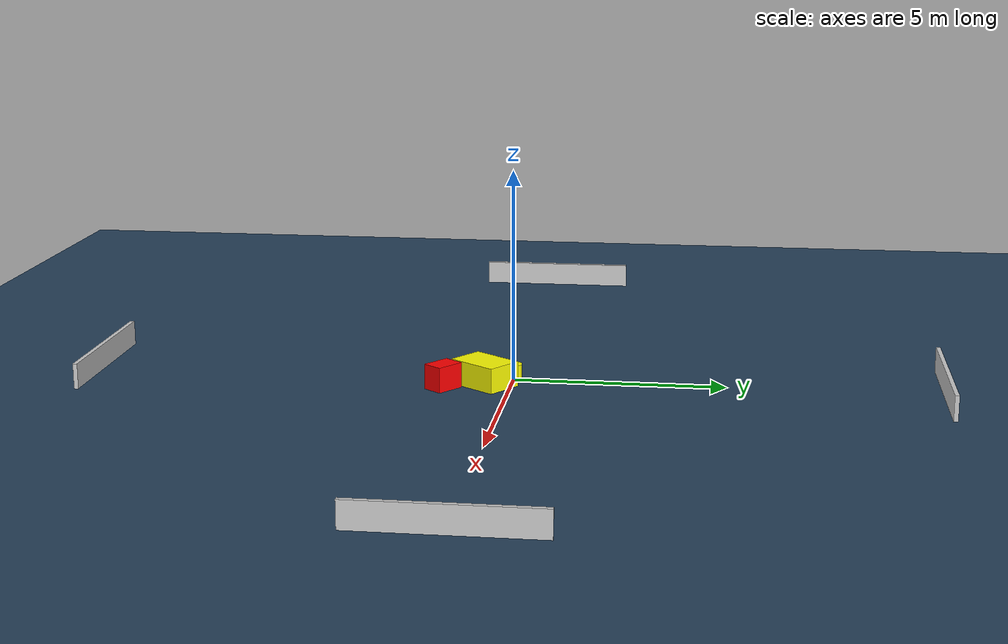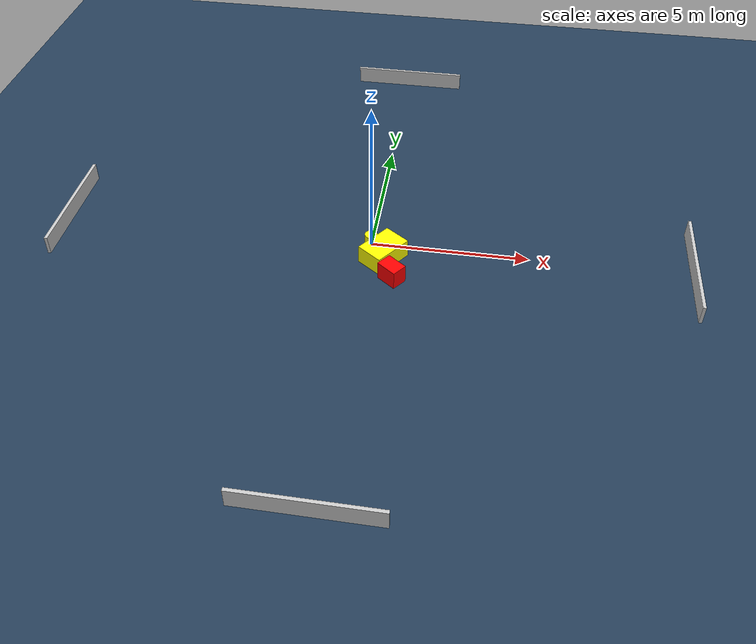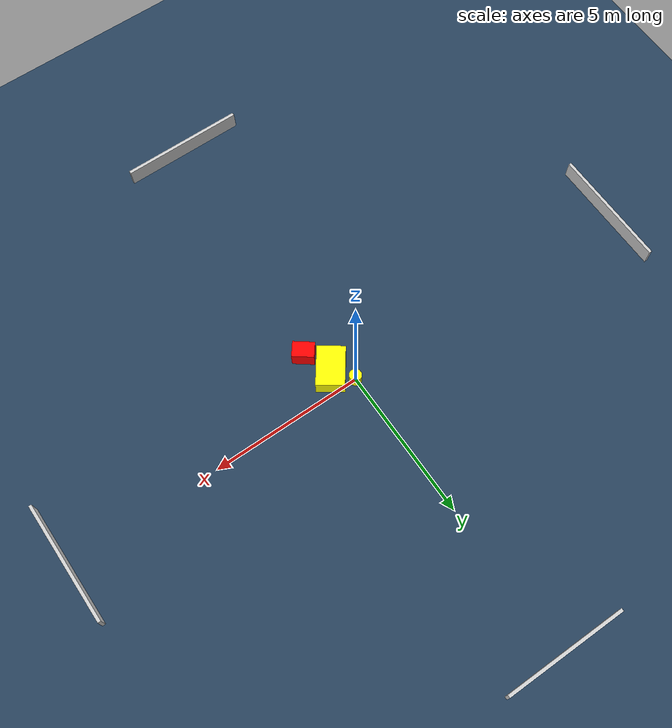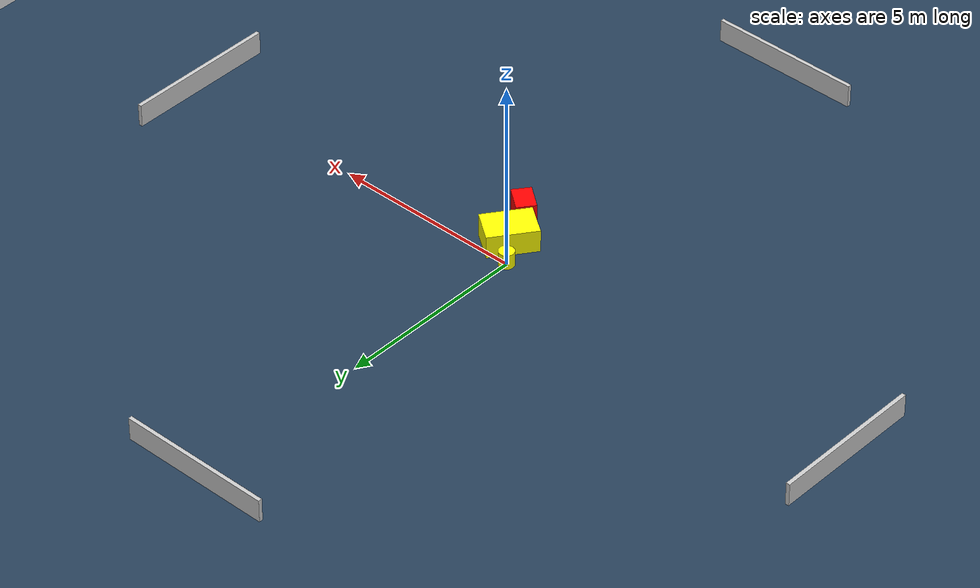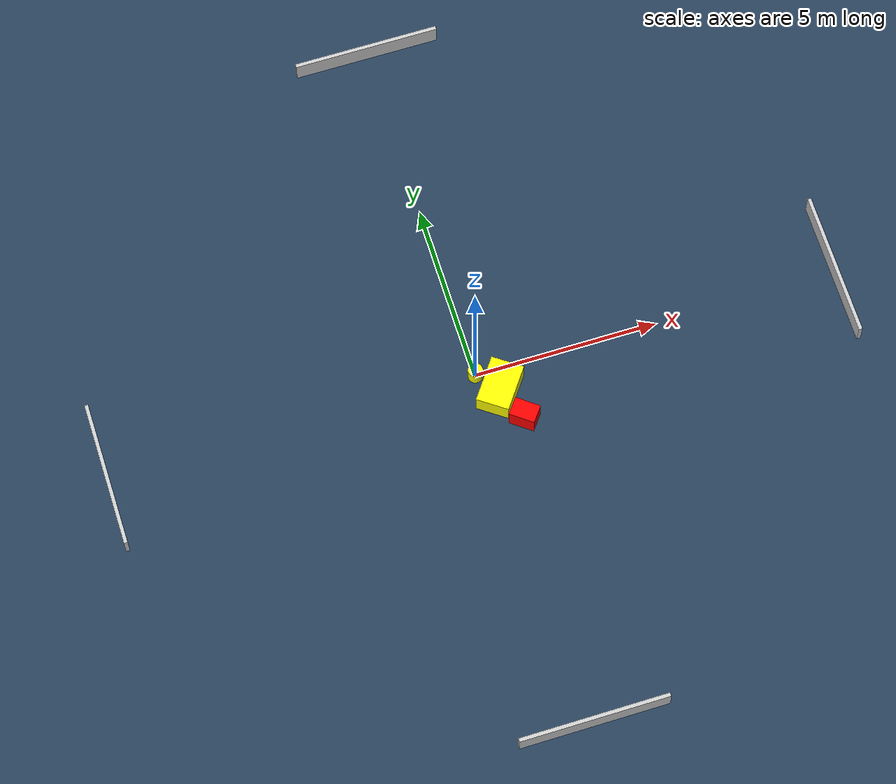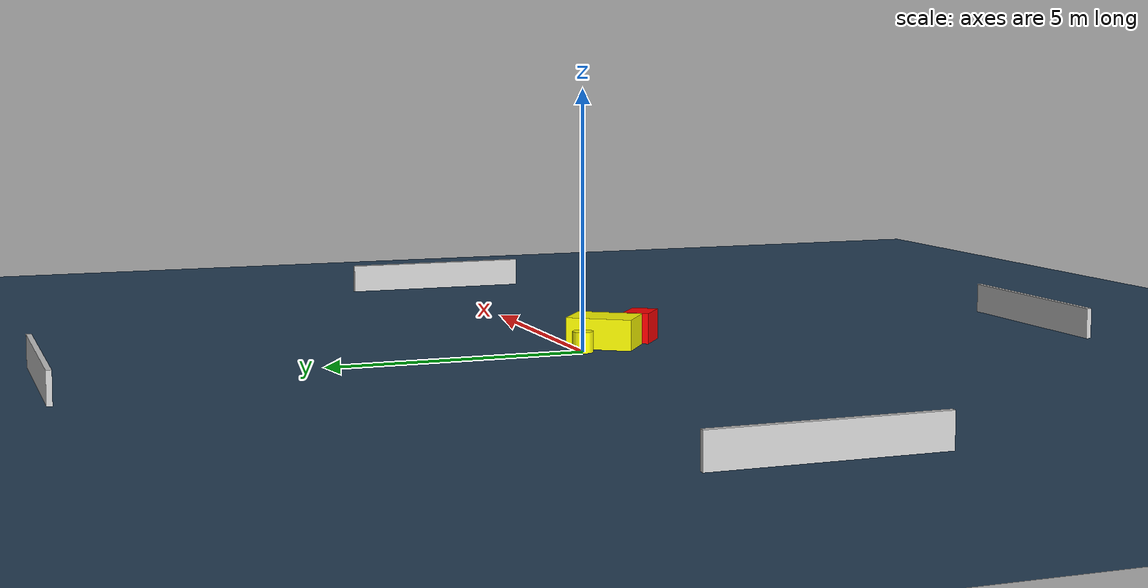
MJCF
<?xml version="1.0" ?>
<mujoco model="generated_environment">
  <option timestep="0.01" integrator="RK4" cone="elliptic"/>
  <default>
    <geom density="1"/>
  </default>
  <asset>
    <texture builtin="gradient" height="3072" name="skybox" rgb1="0.3 0.5 0.7" rgb2="0 0 0" type="skybox" width="512"/>
    <texture builtin="checker" height="300" name="groundplane" rgb1="0.2 0.3 0.4" rgb2="0.1 0.2 0.3" type="2d" width="300"/>
    <material name="groundplane" reflectance="0.2" texrepeat="5 5" texture="groundplane"/>
  </asset>
  <worldbody>
    <light dir="0 0 -1" directional="true" pos="0 0 1.5"/>
    <geom condim="3" friction="0.5 0.005 0.001" material="groundplane" name="floor" pos="0 0 0" size="0 0 0.05" type="plane"/>
    <body name="walls">
      <geom name="wall_1" condim="4" pos="-10.0 0.0 0.3" rgba="0.800000011920929 0.800000011920929 0.800000011920929 1.0" size="0.05 2.0 0.3" type="box"/>
      <geom name="wall_2" condim="4" pos="10.0 0.0 0.3" rgba="0.800000011920929 0.800000011920929 0.800000011920929 1.0" size="0.05 2.0 0.3" type="box"/>
      <geom name="wall_3" condim="4" pos="0.0 -10.0 0.3" rgba="0.800000011920929 0.800000011920929 0.800000011920929 1.0" size="2.0 0.05 0.3" type="box"/>
      <geom name="wall_4" condim="4" pos="0.0 10.0 0.3" rgba="0.800000011920929 0.800000011920929 0.800000011920929 1.0" size="2.0 0.05 0.3" type="box"/>
    </body>
    <body name="robot">
      <joint name="joint_x" type="slide" pos="0 0 0" axis="1 0 0"/>
      <joint name="joint_y" type="slide" pos="0 0 0" axis="0 1 0"/>
      <geom name="robot" type="cylinder" pos="0.0 0.0 0.2" size="0.2 0.2 0.0" mass="5.0" friction="1.0 0.005 0.0001" condim="4" rgba="1.0 1.0 0.0 1.0"/>
    </body>
    <body name="obstacle_1_movable">
      <geom name="obstacle_1_movable" condim="4" pos="0.47940712271765584 -0.6256278360543677 0.3" euler="0 0 144.10438280285527" friction="0.0 0.005 0.001" rgba="1.0 1.0 0.0 1.0" size="0.4482431727108327 0.6437219416336304 0.3" type="box" mass="0.1"/>
      <joint type="free"/>
    </body>
    <body name="obstacle_2_static">
      <geom name="obstacle_2_static" condim="4" pos="0.8642204858001531 -1.543098895431545 0.3" euler="0 0 142.516046453253" friction="0.0 0.005 0.001" rgba="1.0 0.0 0.0 1.0" size="0.3493321869830066 0.2517366972571879 0.3" type="box"/>
    </body>
  </worldbody>
  <actuator>
    <motor name="actuator_x" joint="joint_x" gear="1" ctrlrange="-1 1"/>
    <motor name="actuator_y" joint="joint_y" gear="1" ctrlrange="-1 1"/>
  </actuator>
</mujoco>
